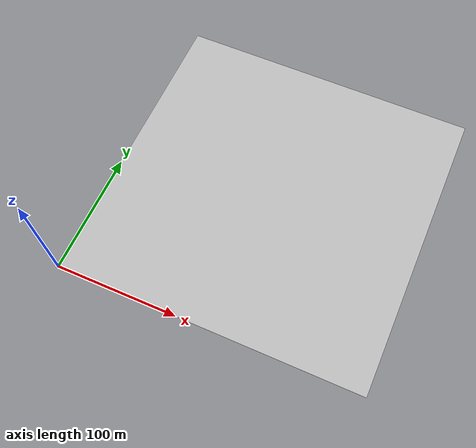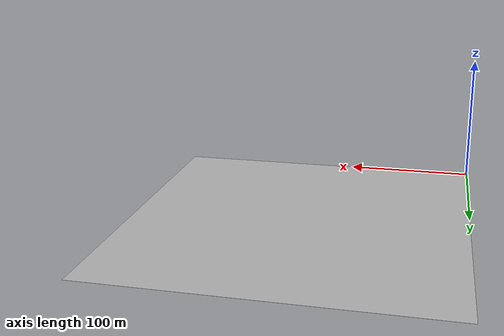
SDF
<?xml version="1.0" ?>
<sdf version="1.5">
  <model name="ground2">
    <static>true</static>
    <link name="shudian_link">
      <collision name="collision">
        <geometry>
          <mesh>
          <scale>1 1.62 0.01</scale>
            <uri>model://grounddae/meshes/model.dae</uri>
          </mesh>
        </geometry>
      </collision>
      <visual name="visual">
        <geometry>
          <mesh>
          <scale>1 1.62 0.01</scale>
            <uri>model://grounddae/meshes/model.dae</uri>
          </mesh>
        </geometry>
      </visual>
    </link>
  </model>
</sdf>
